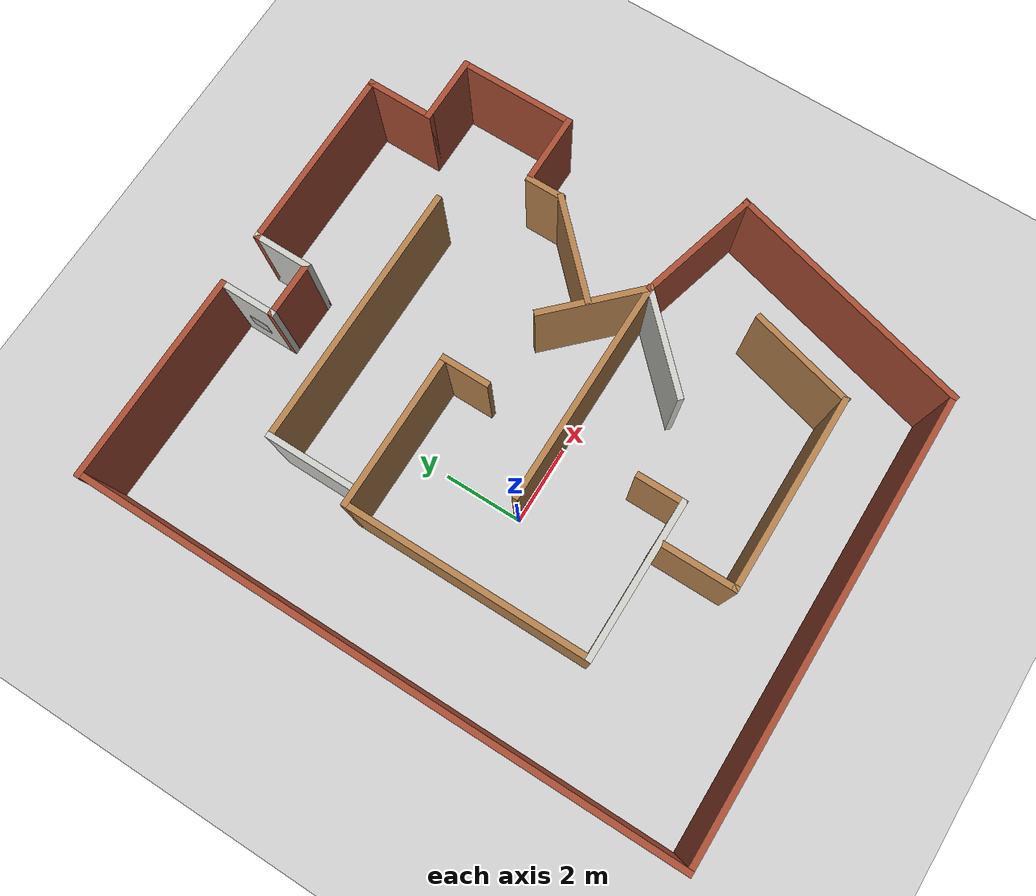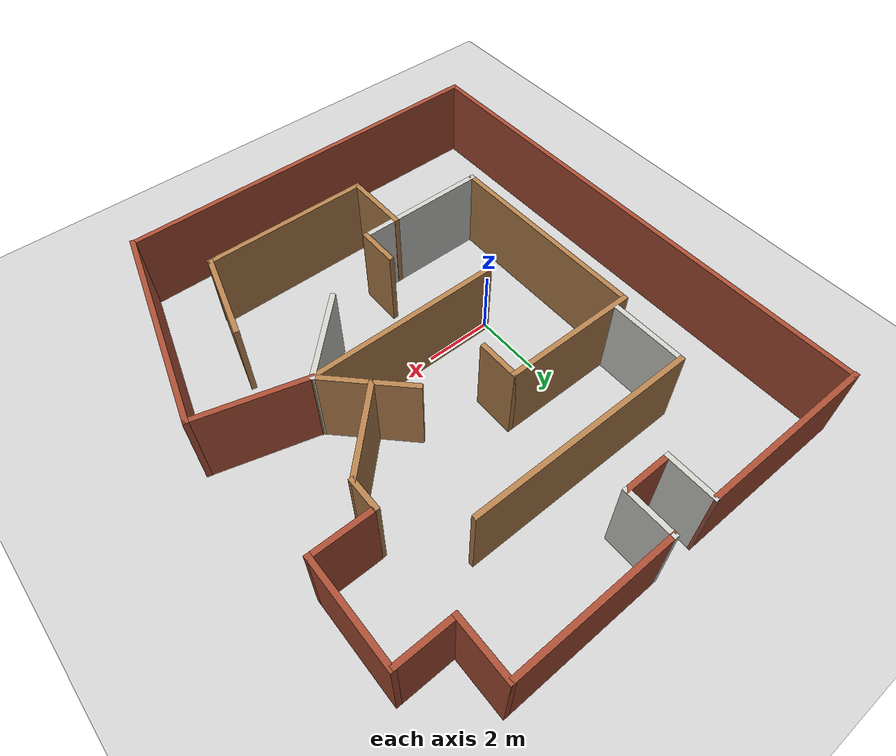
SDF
<sdf version="1.6">
 <world name="default">
  <plugin name="gazebo_ros_state" filename="libgazebo_ros_state.so">
   <ros><namespace>/gazebo</namespace></ros>
   <update_rate>1.0</update_rate>
  </plugin>
  <light name="sun" type="directional">
   <pose>0 0 10 0 -0 0</pose>
   <diffuse>0.8 0.8 0.8 1</diffuse>
   <specular>0.2 0.2 0.2 1</specular>
   <attenuation>
    <range>1000</range>
    <constant>0.9</constant>
    <linear>0.01</linear>
    <quadratic>0.001</quadratic>
   </attenuation>
   <direction>-0.5 0.1 -0.9</direction>
  </light>
  <model name="ground_plane">
   <static>1</static>
   <link name="link">
    <collision name="collision">
     <geometry><plane><normal>0 0 1</normal><size>100 100</size></plane></geometry>
     <surface>
      <contact><collide_bitmask>65535</collide_bitmask></contact>
      <friction><ode><mu>100</mu><mu2>50</mu2></ode></friction>
     </surface>
    </collision>
    <visual name="visual">
     <cast_shadows>0</cast_shadows>
     <geometry><plane><normal>0 0 1</normal><size>100 100</size></plane></geometry>
     <material>
      <script><uri>file://media/materials/scripts/gazebo.material</uri><name>Gazebo/Grey</name></script>
     </material>
    </visual>
   </link>
  </model>
  <gravity>0 0 -9.8</gravity>
  <magnetic_field>6e-06 2.3e-05 -4.2e-05</magnetic_field>
  <atmosphere type="adiabatic"/>
  <physics name="default_physics" default="0" type="ode">
   <max_step_size>0.001</max_step_size>
   <real_time_factor>1</real_time_factor>
   <real_time_update_rate>1000</real_time_update_rate>
  </physics>
  <scene><ambient>0.4 0.4 0.4 1</ambient><background>0.7 0.7 0.7 1</background><shadows>1</shadows></scene>
  <audio><device>default</device></audio>
  <spherical_coordinates>
   <surface_model>EARTH_WGS84</surface_model>
   <latitude_deg>0</latitude_deg>
   <longitude_deg>0</longitude_deg>
   <elevation>0</elevation>
   <heading_deg>0</heading_deg>
  </spherical_coordinates>
  <model name="dat160">
   <pose>2.07112 0.688065 0 0 -0 0</pose>
   <link name="Wall_11">
    <collision name="Wall_11_Collision">
     <geometry><box><size>5.75 0.15 2.5</size></box></geometry>
     <pose>0 0 1.25 0 -0 0</pose>
    </collision>
    <visual name="Wall_11_Visual">
     <pose>0 0 1.25 0 -0 0</pose>
     <geometry><box><size>5.75 0.15 2.5</size></box></geometry>
     <material>
      <script><uri>file://media/materials/scripts/gazebo.material</uri><name>Gazebo/Wood</name></script>
      <ambient>1 1 1 1</ambient>
     </material>
     <meta><layer>0</layer></meta>
    </visual>
    <pose>0.799878 -0.630205 0 0 -0 0</pose>
   </link>
   <link name="Wall_14">
    <collision name="Wall_14_Collision">
     <geometry><box><size>2.75 0.15 2.5</size></box></geometry>
     <pose>0 0 1.25 0 -0 0</pose>
    </collision>
    <visual name="Wall_14_Visual">
     <pose>0 0 1.25 0 -0 0</pose>
     <geometry><box><size>2.75 0.15 2.5</size></box></geometry>
     <material>
      <script><uri>file://media/materials/scripts/gazebo.material</uri><name>Gazebo/Wood</name></script>
      <ambient>1 1 1 1</ambient>
     </material>
     <meta><layer>0</layer></meta>
    </visual>
    <pose>2.68064 0.289034 0 0 -0 2.35619</pose>
   </link>
   <link name="Wall_16">
    <collision name="Wall_16_Collision">
     <geometry><box><size>2.75 0.15 2.5</size></box></geometry>
     <pose>0 0 1.25 0 -0 0</pose>
    </collision>
    <visual name="Wall_16_Visual">
     <pose>0 0 1.25 0 -0 0</pose>
     <geometry><box><size>2.75 0.15 2.5</size></box></geometry>
     <material>
      <script><uri>file://media/materials/scripts/gazebo.material</uri><name>Gazebo/CeilingTiled</name></script>
      <ambient>1 1 1 1</ambient>
     </material>
     <meta><layer>0</layer></meta>
    </visual>
    <pose>2.68064 -1.54944 0 0 -0 -2.35619</pose>
   </link>
   <link name="Wall_18">
    <collision name="Wall_18_Collision">
     <geometry><box><size>2 0.15 2.5</size></box></geometry>
     <pose>0 0 1.25 0 -0 0</pose>
    </collision>
    <visual name="Wall_18_Visual">
     <pose>0 0 1.25 0 -0 0</pose>
     <geometry><box><size>2 0.15 2.5</size></box></geometry>
     <material>
      <script><uri>file://media/materials/scripts/gazebo.material</uri><name>Gazebo/Wood</name></script>
      <ambient>1 1 1 1</ambient>
     </material>
     <meta><layer>0</layer></meta>
    </visual>
    <pose>-1.22872 -4.64083 0 0 -0 -1.5708</pose>
   </link>
   <link name="Wall_19">
    <collision name="Wall_19_Collision">
     <geometry><box><size>5 0.15 2.5</size></box></geometry>
     <pose>0 0 1.25 0 -0 0</pose>
    </collision>
    <visual name="Wall_19_Visual">
     <pose>0 0 1.25 0 -0 0</pose>
     <geometry><box><size>5 0.15 2.5</size></box></geometry>
     <material>
      <script><uri>file://media/materials/scripts/gazebo.material</uri><name>Gazebo/Wood</name></script>
      <ambient>1 1 1 1</ambient>
     </material>
     <meta><layer>0</layer></meta>
    </visual>
    <pose>1.19628 -5.56583 0 0 -0 0</pose>
   </link>
   <link name="Wall_20">
    <collision name="Wall_20_Collision">
     <geometry><box><size>2.75 0.15 2.5</size></box></geometry>
     <pose>0 0 1.25 0 -0 0</pose>
    </collision>
    <visual name="Wall_20_Visual">
     <pose>0 0 1.25 0 -0 0</pose>
     <geometry><box><size>2.75 0.15 2.5</size></box></geometry>
     <material>
      <script><uri>file://media/materials/scripts/gazebo.material</uri><name>Gazebo/Wood</name></script>
      <ambient>1 1 1 1</ambient>
     </material>
     <meta><layer>0</layer></meta>
    </visual>
    <pose>3.95775 -4.31013 0 0 -0 1.309</pose>
   </link>
   <link name="Wall_23">
    <collision name="Wall_23_Collision">
     <geometry><box><size>2.25 0.15 2.5</size></box></geometry>
     <pose>0 0 1.25 0 -0 0</pose>
    </collision>
    <visual name="Wall_23_Visual">
     <pose>0 0 1.25 0 -0 0</pose>
     <geometry><box><size>2.25 0.15 2.5</size></box></geometry>
     <material>
      <script><uri>file://media/materials/scripts/gazebo.material</uri><name>Gazebo/CeilingTiled</name></script>
      <ambient>1 1 1 1</ambient>
     </material>
     <meta><layer>0</layer></meta>
    </visual>
    <pose>-3.70254 3.55862 0 0 -0 1.5708</pose>
   </link>
   <link name="Wall_24">
    <collision name="Wall_24_Collision">
     <geometry><box><size>6.75 0.15 2.5</size></box></geometry>
     <pose>0 0 1.25 0 -0 0</pose>
    </collision>
    <visual name="Wall_24_Visual">
     <pose>0 0 1.25 0 -0 0</pose>
     <geometry><box><size>6.75 0.15 2.5</size></box></geometry>
     <material>
      <script><uri>file://media/materials/scripts/gazebo.material</uri><name>Gazebo/Wood</name></script>
      <ambient>1 1 1 1</ambient>
     </material>
     <meta><layer>0</layer></meta>
    </visual>
    <pose>-0.402535 4.60862 0 0 -0 0</pose>
   </link>
   <link name="Wall_26">
    <collision name="Wall_26_Collision">
     <geometry><box><size>2.75 0.15 2.5</size></box></geometry>
     <pose>0 0 1.25 0 -0 0</pose>
    </collision>
    <visual name="Wall_26_Visual">
     <pose>0 0 1.25 0 -0 0</pose>
     <geometry><box><size>2.75 0.15 2.5</size></box></geometry>
     <material>
      <script><uri>file://media/materials/scripts/gazebo.material</uri><name>Gazebo/Wood</name></script>
      <ambient>1 1 1 1</ambient>
     </material>
     <meta><layer>0</layer></meta>
    </visual>
    <pose>3.52095 1.32644 0 0 -0 0.785398</pose>
   </link>
   <link name="Wall_27">
    <collision name="Wall_27_Collision">
     <geometry><box><size>1 0.15 2.5</size></box></geometry>
     <pose>0 0 1.25 0 -0 0</pose>
    </collision>
    <visual name="Wall_27_Visual">
     <pose>0 0 1.25 0 -0 0</pose>
     <geometry><box><size>1 0.15 2.5</size></box></geometry>
     <material>
      <script><uri>file://media/materials/scripts/gazebo.material</uri><name>Gazebo/Wood</name></script>
      <ambient>1 1 1 1</ambient>
     </material>
     <meta><layer>0</layer></meta>
    </visual>
    <pose>4.44019 2.67068 0 0 -0 1.5708</pose>
   </link>
   <link name="Wall_3">
    <collision name="Wall_3_Collision">
     <geometry><box><size>4 0.15 2.5</size></box></geometry>
     <pose>0 0 1.25 0 -0 0</pose>
    </collision>
    <visual name="Wall_3_Visual">
     <pose>0 0 1.25 0 -0 0</pose>
     <geometry><box><size>4 0.15 2.5</size></box></geometry>
     <material>
      <script><uri>file://media/materials/scripts/gazebo.material</uri><name>Gazebo/Wood</name></script>
      <ambient>1 1 1 1</ambient>
     </material>
     <meta><layer>0</layer></meta>
    </visual>
    <pose>-2.14994 2.37562 0 0 -0 0</pose>
   </link>
   <link name="Wall_31">
    <collision name="Wall_31_Collision">
     <geometry><box><size>1.5 0.15 2.5</size></box></geometry>
     <pose>0 0 1.25 0 -0 0</pose>
    </collision>
    <visual name="Wall_31_Visual">
     <pose>0 0 1.25 0 -0 0</pose>
     <geometry><box><size>1.5 0.15 2.5</size></box></geometry>
     <material>
      <script><uri>file://media/materials/scripts/gazebo.material</uri><name>Gazebo/Bricks</name></script>
      <ambient>1 1 1 1</ambient>
     </material>
     <meta><layer>0</layer></meta>
    </visual>
    <pose>-0.713318 6.20605 0 0 -0 0</pose>
   </link>
   <link name="Wall_32">
    <collision name="Wall_32_Collision">
     <geometry><box><size>1.5 0.15 2.5</size></box></geometry>
     <pose>0 0 1.25 0 -0 0</pose>
    </collision>
    <visual name="Wall_32_Visual">
     <pose>0 0 1.25 0 -0 0</pose>
     <geometry><box><size>1.5 0.15 2.5</size></box></geometry>
     <material>
      <script><uri>file://media/materials/scripts/gazebo.material</uri><name>Gazebo/CeilingTiled</name></script>
      <ambient>1 1 1 1</ambient>
     </material>
     <meta><layer>0</layer></meta>
    </visual>
    <pose>-0.038317 6.88105 0 0 -0 1.5708</pose>
   </link>
   <link name="Wall_33">
    <collision name="Wall_33_Collision">
     <geometry><box><size>4.75 0.15 2.5</size></box></geometry>
     <pose>0 0 1.25 0 -0 0</pose>
    </collision>
    <visual name="Wall_33_Visual">
     <pose>0 0 1.25 0 -0 0</pose>
     <geometry><box><size>4.75 0.15 2.5</size></box></geometry>
     <material>
      <script><uri>file://media/materials/scripts/gazebo.material</uri><name>Gazebo/Bricks</name></script>
      <ambient>1 1 1 1</ambient>
     </material>
     <meta><layer>0</layer></meta>
    </visual>
    <pose>2.26168 7.55605 0 0 -0 0</pose>
   </link>
   <link name="Wall_34">
    <collision name="Wall_34_Collision">
     <geometry><box><size>1.75 0.15 2.5</size></box></geometry>
     <pose>0 0 1.25 0 -0 0</pose>
    </collision>
    <visual name="Wall_34_Visual">
     <pose>0 0 1.25 0 -0 0</pose>
     <geometry><box><size>1.75 0.15 2.5</size></box></geometry>
     <material>
      <script><uri>file://media/materials/scripts/gazebo.material</uri><name>Gazebo/Bricks</name></script>
      <ambient>1 1 1 1</ambient>
     </material>
     <meta><layer>0</layer></meta>
    </visual>
    <pose>4.56168 6.75605 0 0 -0 -1.5708</pose>
   </link>
   <link name="Wall_35">
    <collision name="Wall_35_Collision">
     <geometry><box><size>1.75 0.15 2.5</size></box></geometry>
     <pose>0 0 1.25 0 -0 0</pose>
    </collision>
    <visual name="Wall_35_Visual">
     <pose>0 0 1.25 0 -0 0</pose>
     <geometry><box><size>1.75 0.15 2.5</size></box></geometry>
     <material>
      <script><uri>file://media/materials/scripts/gazebo.material</uri><name>Gazebo/Bricks</name></script>
      <ambient>1 1 1 1</ambient>
     </material>
     <meta><layer>0</layer></meta>
    </visual>
    <pose>5.36168 5.95605 0 0 -0 0</pose>
   </link>
   <link name="Wall_36">
    <collision name="Wall_36_Collision">
     <geometry><box><size>3 0.15 2.5</size></box></geometry>
     <pose>0 0 1.25 0 -0 0</pose>
    </collision>
    <visual name="Wall_36_Visual">
     <pose>0 0 1.25 0 -0 0</pose>
     <geometry><box><size>3 0.15 2.5</size></box></geometry>
     <material>
      <script><uri>file://media/materials/scripts/gazebo.material</uri><name>Gazebo/Bricks</name></script>
      <ambient>1 1 1 1</ambient>
     </material>
     <meta><layer>0</layer></meta>
    </visual>
    <pose>6.16168 4.53105 0 0 -0 -1.5708</pose>
   </link>
   <link name="Wall_37">
    <collision name="Wall_37_Collision">
     <geometry><box><size>1.75 0.15 2.5</size></box></geometry>
     <pose>0 0 1.25 0 -0 0</pose>
    </collision>
    <visual name="Wall_37_Visual">
     <pose>0 0 1.25 0 -0 0</pose>
     <geometry><box><size>1.75 0.15 2.5</size></box></geometry>
     <material>
      <script><uri>file://media/materials/scripts/gazebo.material</uri><name>Gazebo/Bricks</name></script>
      <ambient>1 1 1 1</ambient>
     </material>
     <meta><layer>0</layer></meta>
    </visual>
    <pose>5.36168 3.10605 0 0 -0 3.14159</pose>
   </link>
   <link name="Wall_39">
    <collision name="Wall_39_Collision">
     <geometry><box><size>1.5 0.15 2.5</size></box></geometry>
     <pose>0 0 1.25 0 -0 0</pose>
    </collision>
    <visual name="Wall_39_Visual">
     <pose>0 0 1.25 0 -0 0</pose>
     <geometry><box><size>1.5 0.15 2.5</size></box></geometry>
     <material>
      <script><uri>file://media/materials/scripts/gazebo.material</uri><name>Gazebo/CeilingTiled</name></script>
      <ambient>1 1 1 1</ambient>
     </material>
     <meta><layer>0</layer></meta>
    </visual>
    <pose>-1.38832 6.88105 0 0 -0 1.5708</pose>
   </link>
   <link name="Wall_41">
    <collision name="Wall_41_Collision">
     <geometry><box><size>5.34587 0.15 2.5</size></box></geometry>
     <pose>0 0 1.25 0 -0 0</pose>
    </collision>
    <visual name="Wall_41_Visual">
     <pose>0 0 1.25 0 -0 0</pose>
     <geometry><box><size>5.34587 0.15 2.5</size></box></geometry>
     <material>
      <script><uri>file://media/materials/scripts/gazebo.material</uri><name>Gazebo/Bricks</name></script>
      <ambient>1 1 1 1</ambient>
     </material>
     <meta><layer>0</layer></meta>
    </visual>
    <pose>-3.98622 7.56935 0 0 -0 3.13647</pose>
   </link>
   <link name="Wall_42">
    <collision name="Wall_42_Collision">
     <geometry><box><size>15.25 0.15 2.5</size></box></geometry>
     <pose>0 0 1.25 0 -0 0</pose>
    </collision>
    <visual name="Wall_42_Visual">
     <pose>0 0 1.25 0 -0 0</pose>
     <geometry><box><size>15.25 0.15 2.5</size></box></geometry>
     <material>
      <script><uri>file://media/materials/scripts/gazebo.material</uri><name>Gazebo/Bricks</name></script>
      <ambient>1 1 1 1</ambient>
     </material>
     <meta><layer>0</layer></meta>
    </visual>
    <pose>-6.55752 0.006046 0 0 -0 -1.5708</pose>
   </link>
   <link name="Wall_44">
    <collision name="Wall_44_Collision">
     <geometry><box><size>11.5 0.15 2.5</size></box></geometry>
     <pose>0 0 1.25 0 -0 0</pose>
    </collision>
    <visual name="Wall_44_Visual">
     <pose>0 0 1.25 0 -0 0</pose>
     <geometry><box><size>11.5 0.15 2.5</size></box></geometry>
     <material>
      <script><uri>file://media/materials/scripts/gazebo.material</uri><name>Gazebo/Bricks</name></script>
      <ambient>1 1 1 1</ambient>
     </material>
     <meta><layer>0</layer></meta>
    </visual>
    <pose>-0.88252 -7.54395 0 0 -0 0</pose>
   </link>
   <link name="Wall_46">
    <collision name="Wall_46_Collision">
     <geometry><box><size>3.19864 0.15 2.5</size></box></geometry>
     <pose>0 0 1.25 0 -0 0</pose>
    </collision>
    <visual name="Wall_46_Visual">
     <pose>0 0 1.25 0 -0 0</pose>
     <geometry><box><size>3.19864 0.15 2.5</size></box></geometry>
     <material>
      <script><uri>file://media/materials/scripts/gazebo.material</uri><name>Gazebo/Bricks</name></script>
      <ambient>1 1 1 1</ambient>
     </material>
     <meta><layer>0</layer></meta>
    </visual>
    <pose>5.07046 -1.03137 0 0 -0 -0.266316</pose>
   </link>
   <link name="Wall_47">
    <collision name="Wall_47_Collision">
     <geometry><box><size>6.5 0.15 2.5</size></box></geometry>
     <pose>0 0 1.25 0 -0 0</pose>
    </collision>
    <visual name="Wall_47_Visual">
     <pose>0 0 1.25 0 -0 0</pose>
     <geometry><box><size>6.5 0.15 2.5</size></box></geometry>
     <material>
      <script><uri>file://media/materials/scripts/gazebo.material</uri><name>Gazebo/Bricks</name></script>
      <ambient>1 1 1 1</ambient>
     </material>
     <meta><layer>0</layer></meta>
    </visual>
    <pose>5.7459 -4.49936 0 0 -0 -1.8326</pose>
   </link>
   <link name="Wall_5">
    <collision name="Wall_5_Collision">
     <geometry><box><size>6.25 0.15 2.5</size></box></geometry>
     <pose>0 0 1.25 0 -0 0</pose>
    </collision>
    <visual name="Wall_5_Visual">
     <pose>0 0 1.25 0 -0 0</pose>
     <geometry><box><size>6.25 0.15 2.5</size></box></geometry>
     <material>
      <script><uri>file://media/materials/scripts/gazebo.material</uri><name>Gazebo/Wood</name></script>
      <ambient>1 1 1 1</ambient>
     </material>
     <meta><layer>0</layer></meta>
    </visual>
    <pose>-4.07494 -0.674383 0 0 -0 -1.5708</pose>
   </link>
   <link name="Wall_6">
    <collision name="Wall_6_Collision">
     <geometry><box><size>4 0.15 2.5</size></box></geometry>
     <pose>0 0 1.25 0 -0 0</pose>
    </collision>
    <visual name="Wall_6_Visual">
     <pose>0 0 1.25 0 -0 0</pose>
     <geometry><box><size>4 0.15 2.5</size></box></geometry>
     <material>
      <script><uri>file://media/materials/scripts/gazebo.material</uri><name>Gazebo/CeilingTiled</name></script>
      <ambient>1 1 1 1</ambient>
     </material>
     <meta><layer>0</layer></meta>
    </visual>
    <pose>-2.14994 -3.72438 0 0 -0 0</pose>
   </link>
   <link name="Wall_7">
    <collision name="Wall_7_Collision">
     <geometry><box><size>1.25 0.15 2.5</size></box></geometry>
     <pose>0 0 1.25 0 -0 0</pose>
    </collision>
    <visual name="Wall_7_Visual">
     <pose>0 0 1.25 0 -0 0</pose>
     <geometry><box><size>1.25 0.15 2.5</size></box></geometry>
     <material>
      <script><uri>file://media/materials/scripts/gazebo.material</uri><name>Gazebo/Wood</name></script>
      <ambient>1 1 1 1</ambient>
     </material>
     <meta><layer>0</layer></meta>
    </visual>
    <pose>-0.224938 -3.17438 0 0 -0 1.5708</pose>
   </link>
   <link name="Wall_9">
    <collision name="Wall_9_Collision">
     <geometry><box><size>1.25 0.15 2.5</size></box></geometry>
     <pose>0 0 1.25 0 -0 0</pose>
    </collision>
    <visual name="Wall_9_Visual">
     <pose>0 0 1.25 0 -0 0</pose>
     <geometry><box><size>1.25 0.15 2.5</size></box></geometry>
     <material>
      <script><uri>file://media/materials/scripts/gazebo.material</uri><name>Gazebo/Wood</name></script>
      <ambient>1 1 1 1</ambient>
     </material>
     <meta><layer>0</layer></meta>
    </visual>
    <pose>-0.224938 1.82562 0 0 -0 -1.5708</pose>
   </link>
   <static>1</static>
  </model>
  <model name="Baby">
   <static>1</static>
   <link name="link">
    <visual name="visual"><geometry><mesh><uri>model://baby/meshes/Baby.dae</uri></mesh></geometry></visual>
   </link>
   <pose>0.603808 7.58692 1.22715 3.14036 -0 0</pose>
  </model>
  <model name="Marker3">
   <static>1</static>
   <link name="link">
    <visual name="visual"><geometry><mesh><uri>model://marker3/meshes/Marker3.dae</uri></mesh></geometry></visual>
   </link>
   <pose>-0.65687 -3.11631 0.004984 0 0 -1.57</pose>
  </model>
  <model name="Marker4">
   <static>1</static>
   <link name="link">
    <visual name="visual"><geometry><mesh><uri>model://marker4/meshes/Marker4.dae</uri></mesh></geometry></visual>
   </link>
   <pose>4.81261 -0.904153 0 0 0 -0.793601</pose>
  </model>
  <light name="user_point_light_0" type="point">
   <pose>-0.640372 -4.46518 1 0 -0 0</pose>
   <diffuse>0.5 0.5 0.5 1</diffuse>
   <specular>0.1 0.1 0.1 1</specular>
   <attenuation>
    <range>20</range>
    <constant>0.5</constant>
    <linear>0.01</linear>
    <quadratic>0.001</quadratic>
   </attenuation>
   <cast_shadows>0</cast_shadows>
   <direction>0 0 -1</direction>
  </light>
  <light name="user_point_light_1" type="point">
   <pose>5.36993 -1.39471 1 0 -0 0</pose>
   <diffuse>0.5 0.5 0.5 1</diffuse>
   <specular>0.1 0.1 0.1 1</specular>
   <attenuation>
    <range>20</range>
    <constant>0.5</constant>
    <linear>0.01</linear>
    <quadratic>0.001</quadratic>
   </attenuation>
   <cast_shadows>0</cast_shadows>
   <direction>0 0 -1</direction>
  </light>
  <light name="user_point_light_2" type="point">
   <pose>-0.812895 4.47218 1 0 -0 0</pose>
   <diffuse>0.5 0.5 0.5 1</diffuse>
   <specular>0.1 0.1 0.1 1</specular>
   <attenuation>
    <range>20</range>
    <constant>0.5</constant>
    <linear>0.01</linear>
    <quadratic>0.001</quadratic>
   </attenuation>
   <cast_shadows>0</cast_shadows>
   <direction>0 0 -1</direction>
  </light>
  <light name="user_point_light_3" type="point">
   <pose>2.71959 7.82502 1 0 -0 0</pose>
   <diffuse>0.5 0.5 0.5 1</diffuse>
   <specular>0.1 0.1 0.1 1</specular>
   <attenuation>
    <range>20</range>
    <constant>0.5</constant>
    <linear>0.01</linear>
    <quadratic>0.001</quadratic>
   </attenuation>
   <cast_shadows>0</cast_shadows>
   <direction>0 0 -1</direction>
  </light>
  <light name="user_point_light_4" type="point">
   <pose>-0.540168 7.52667 1 0 -0 0</pose>
   <diffuse>0.5 0.5 0.5 1</diffuse>
   <specular>0.1 0.1 0.1 1</specular>
   <attenuation>
    <range>20</range>
    <constant>0.5</constant>
    <linear>0.01</linear>
    <quadratic>0.001</quadratic>
   </attenuation>
   <cast_shadows>0</cast_shadows>
   <direction>0 0 -1</direction>
  </light>
 </world>
</sdf>
